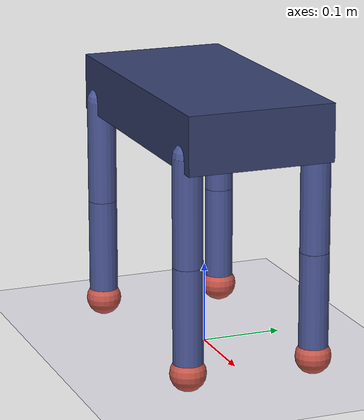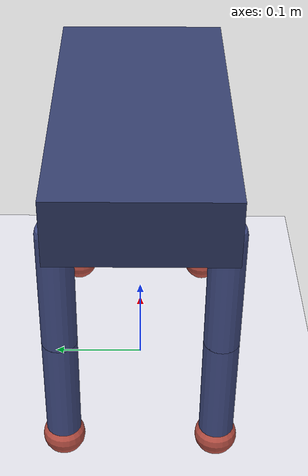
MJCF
<mujoco model="quadruped">
  <option timestep="0.005" integrator="implicitfast" solver="Newton"
          iterations="50" ls_iterations="20" cone="pyramidal"/>

  <visual>
    <headlight ambient="0.45 0.45 0.45" diffuse="0.6 0.6 0.6" specular="0.1 0.1 0.1"/>
    <global offwidth="640" offheight="480"/>
  </visual>

  <asset>
    <texture name="grid" type="2d" builtin="checker" rgb1="0.92 0.92 0.94" rgb2="0.83 0.83 0.87"
             width="256" height="256"/>
    <material name="floor_mat" texture="grid" texrepeat="12 12" reflectance="0"/>
  </asset>

  <default>
    <!-- leg links: capsules, NO collision (only feet touch the floor) -->
    <default class="leg">
      <geom type="capsule" size="0.018" rgba="0.30 0.35 0.60 1" contype="0" conaffinity="0"
            mass="0.25"/>
      <joint type="hinge" axis="0 1 0" damping="0.5" armature="0.01" frictionloss="0.02"/>
    </default>
    <!-- feet: the ONLY collidable robot geoms; friction + contact softness pinned -->
    <default class="foot">
      <geom type="sphere" size="0.022" rgba="0.80 0.35 0.30 1" contype="1" conaffinity="1"
            mass="0.05" friction="1.0 0.02 0.001" solref="0.01 1" solimp="0.9 0.95 0.001"/>
    </default>
  </default>

  <worldbody>
    <!-- tracking-ish side camera (moves with nothing; wide enough for a short walk) -->
    <camera name="side" pos="0 -1.6 0.5" xyaxes="1 0 0 0 0.4 1"/>
    <light name="top" pos="0 0 2" dir="0 0 -1" diffuse="0.7 0.7 0.7"/>

    <!-- the ground: the one static collidable, friction pinned to match the feet -->
    <geom name="floor" type="plane" size="0 0 0.05" material="floor_mat"
          contype="1" conaffinity="1" friction="1.0 0.02 0.001"/>

    <!-- floating-base torso: a box on a free joint (6 DOF) -->
    <body name="torso" pos="0 0 0.30">
      <freejoint name="root"/>
      <geom name="torso_geom" type="box" size="0.18 0.09 0.035" rgba="0.20 0.24 0.42 1"
            mass="3.0" contype="0" conaffinity="0"/>

      <!-- FRONT-LEFT leg (+x front, +y left) -->
      <body name="FL_thigh" pos="0.15 0.08 -0.02">
        <joint name="FL_hip" class="leg"/>
        <geom name="FL_thigh_geom" class="leg" fromto="0 0 0 0 0 -0.13"/>
        <body name="FL_shin" pos="0 0 -0.13">
          <joint name="FL_knee" class="leg"/>
          <geom name="FL_shin_geom" class="leg" fromto="0 0 0 0 0 -0.13"/>
          <geom name="FL_foot" class="foot" pos="0 0 -0.13"/>
        </body>
      </body>

      <!-- FRONT-RIGHT leg -->
      <body name="FR_thigh" pos="0.15 -0.08 -0.02">
        <joint name="FR_hip" class="leg"/>
        <geom name="FR_thigh_geom" class="leg" fromto="0 0 0 0 0 -0.13"/>
        <body name="FR_shin" pos="0 0 -0.13">
          <joint name="FR_knee" class="leg"/>
          <geom name="FR_shin_geom" class="leg" fromto="0 0 0 0 0 -0.13"/>
          <geom name="FR_foot" class="foot" pos="0 0 -0.13"/>
        </body>
      </body>

      <!-- HIND-LEFT leg (-x hind) -->
      <body name="HL_thigh" pos="-0.15 0.08 -0.02">
        <joint name="HL_hip" class="leg"/>
        <geom name="HL_thigh_geom" class="leg" fromto="0 0 0 0 0 -0.13"/>
        <body name="HL_shin" pos="0 0 -0.13">
          <joint name="HL_knee" class="leg"/>
          <geom name="HL_shin_geom" class="leg" fromto="0 0 0 0 0 -0.13"/>
          <geom name="HL_foot" class="foot" pos="0 0 -0.13"/>
        </body>
      </body>

      <!-- HIND-RIGHT leg -->
      <body name="HR_thigh" pos="-0.15 -0.08 -0.02">
        <joint name="HR_hip" class="leg"/>
        <geom name="HR_thigh_geom" class="leg" fromto="0 0 0 0 0 -0.13"/>
        <body name="HR_shin" pos="0 0 -0.13">
          <joint name="HR_knee" class="leg"/>
          <geom name="HR_shin_geom" class="leg" fromto="0 0 0 0 0 -0.13"/>
          <geom name="HR_foot" class="foot" pos="0 0 -0.13"/>
        </body>
      </body>
    </body>
  </worldbody>

  <actuator>
    <position name="FL_hip_act"  joint="FL_hip"  kp="20" kv="0.5" ctrlrange="-1.2 1.2" forcerange="-12 12"/>
    <position name="FL_knee_act" joint="FL_knee" kp="20" kv="0.5" ctrlrange="-2.4 0.2" forcerange="-12 12"/>
    <position name="FR_hip_act"  joint="FR_hip"  kp="20" kv="0.5" ctrlrange="-1.2 1.2" forcerange="-12 12"/>
    <position name="FR_knee_act" joint="FR_knee" kp="20" kv="0.5" ctrlrange="-2.4 0.2" forcerange="-12 12"/>
    <position name="HL_hip_act"  joint="HL_hip"  kp="20" kv="0.5" ctrlrange="-1.2 1.2" forcerange="-12 12"/>
    <position name="HL_knee_act" joint="HL_knee" kp="20" kv="0.5" ctrlrange="-2.4 0.2" forcerange="-12 12"/>
    <position name="HR_hip_act"  joint="HR_hip"  kp="20" kv="0.5" ctrlrange="-1.2 1.2" forcerange="-12 12"/>
    <position name="HR_knee_act" joint="HR_knee" kp="20" kv="0.5" ctrlrange="-2.4 0.2" forcerange="-12 12"/>
  </actuator>
</mujoco>
